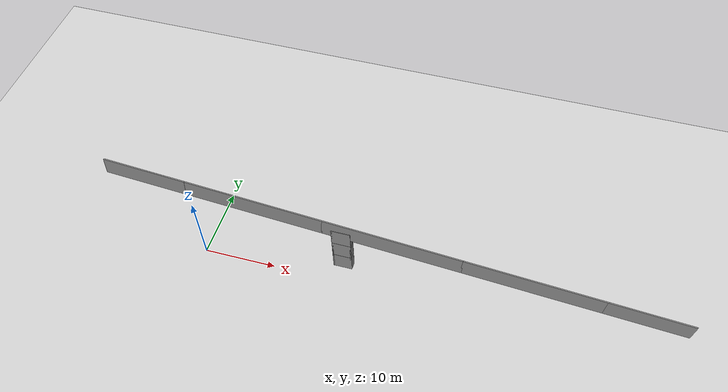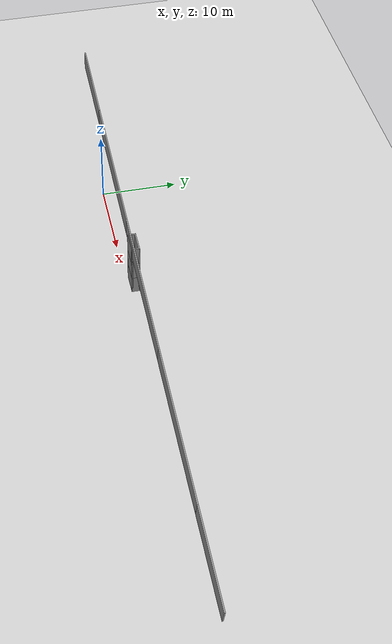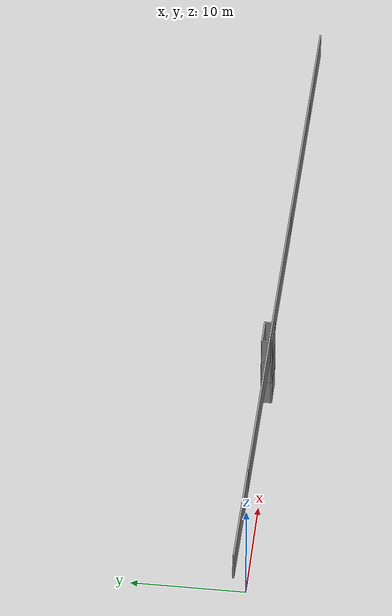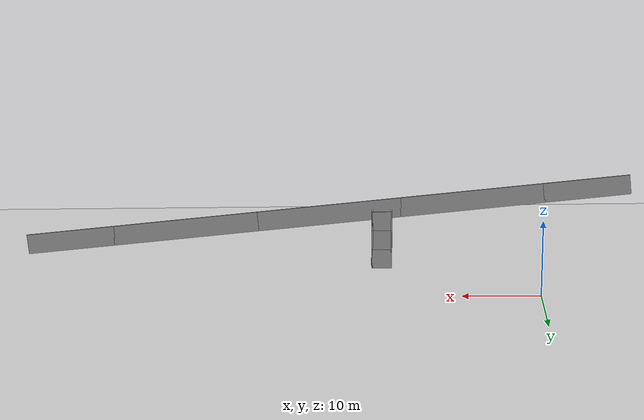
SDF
<sdf version="1.6">
 <world name="default">
  <model name="ground_plane">
   <static>1</static>
   <link name="link">
    <collision name="collision">
     <geometry><plane><normal>0 0 1</normal><size>100 100</size></plane></geometry>
     <surface><friction><ode><mu>100</mu><mu2>50</mu2></ode></friction></surface>
    </collision>
    <visual name="visual">
     <cast_shadows>0</cast_shadows>
     <geometry><plane><normal>0 0 1</normal><size>100 100</size></plane></geometry>
     <material>
      <script><uri>file://media/materials/scripts/gazebo.material</uri><name>Gazebo/Grey</name></script>
     </material>
    </visual>
   </link>
  </model>
  <model name="girder8th">
   <pose>26.53 -0.080607 9.9346 0 0.096041 0</pose>
   <link name="Wall_15">
    <collision name="Wall_15_Collision">
     <geometry><box><size>18 0.15 2.5</size></box></geometry>
     <pose>0 0 1.25 0 -0 0</pose>
    </collision>
    <visual name="Wall_15_Visual">
     <pose>0 0 1.25 0 -0 0</pose>
     <geometry><box><size>18 0.15 2.5</size></box></geometry>
     <material>
      <script><uri>file://media/materials/scripts/gazebo.material</uri><name>Gazebo/Grey</name></script>
      <ambient>1 1 1 1</ambient>
     </material>
    </visual>
    <pose>-17.85 0 0 0 -0 0</pose>
   </link>
   <link name="Wall_17">
    <collision name="Wall_17_Collision">
     <geometry><box><size>18 0.15 2.5</size></box></geometry>
     <pose>0 0 1.25 0 -0 0</pose>
    </collision>
    <visual name="Wall_17_Visual">
     <pose>0 0 1.25 0 -0 0</pose>
     <geometry><box><size>18 0.15 2.5</size></box></geometry>
     <material>
      <script><uri>file://media/materials/scripts/gazebo.material</uri><name>Gazebo/Grey</name></script>
      <ambient>1 1 1 1</ambient>
     </material>
    </visual>
   </link>
   <link name="Wall_19">
    <collision name="Wall_19_Collision">
     <geometry><box><size>18 0.15 2.5</size></box></geometry>
     <pose>0 0 1.25 0 -0 0</pose>
    </collision>
    <visual name="Wall_19_Visual">
     <pose>0 0 1.25 0 -0 0</pose>
     <geometry><box><size>18 0.15 2.5</size></box></geometry>
     <material>
      <script><uri>file://media/materials/scripts/gazebo.material</uri><name>Gazebo/Grey</name></script>
      <ambient>1 1 1 1</ambient>
     </material>
    </visual>
    <pose>17.85 0 0 0 -0 0</pose>
   </link>
   <link name="Wall_21">
    <collision name="Wall_21_Collision">
     <geometry><box><size>10.8 0.15 2.5</size></box></geometry>
     <pose>0 0 1.25 0 -0 0</pose>
    </collision>
    <visual name="Wall_21_Visual">
     <pose>0 0 1.25 0 -0 0</pose>
     <geometry><box><size>10.8 0.15 2.5</size></box></geometry>
     <material>
      <script><uri>file://media/materials/scripts/gazebo.material</uri><name>Gazebo/Grey</name></script>
      <ambient>1 1 1 1</ambient>
     </material>
    </visual>
    <pose>32.1 0 0 0 -0 0</pose>
   </link>
   <link name="Wall_9">
    <collision name="Wall_9_Collision">
     <geometry><box><size>10.8 0.15 2.5</size></box></geometry>
     <pose>0 0 1.25 0 -0 0</pose>
    </collision>
    <visual name="Wall_9_Visual">
     <pose>0 0 1.25 0 -0 0</pose>
     <geometry><box><size>10.8 0.15 2.5</size></box></geometry>
     <material>
      <script><uri>file://media/materials/scripts/gazebo.material</uri><name>Gazebo/Grey</name></script>
      <ambient>1 1 1 1</ambient>
     </material>
    </visual>
    <pose>-32.1 0 0 0 -0 0</pose>
   </link>
   <static>1</static>
  </model>
  <model name="column25_clone_3_clone_clone_0_clone_clone_clone_clone">
   <pose>20.1084 0.281961 4.25147 0 -0 8e-06</pose>
   <link name="Wall_0">
    <collision name="Wall_0_Collision">
     <geometry><box><size>2.5 0.15 2.5</size></box></geometry>
     <pose>0 0 1.25 0 -0 0</pose>
    </collision>
    <visual name="Wall_0_Visual">
     <pose>0 0 1.25 0 -0 0</pose>
     <geometry><box><size>2.5 0.15 2.5</size></box></geometry>
     <material>
      <script><uri>file://media/materials/scripts/gazebo.material</uri><name>Gazebo/Grey</name></script>
      <ambient>1 1 1 1</ambient>
     </material>
    </visual>
    <pose>0 -0.425 0 0 -0 0</pose>
   </link>
   <link name="Wall_1">
    <collision name="Wall_1_Collision">
     <geometry><box><size>1 0.15 2.5</size></box></geometry>
     <pose>0 0 1.25 0 -0 0</pose>
    </collision>
    <visual name="Wall_1_Visual">
     <pose>0 0 1.25 0 -0 0</pose>
     <geometry><box><size>1 0.15 2.5</size></box></geometry>
     <material>
      <script><uri>file://media/materials/scripts/gazebo.material</uri><name>Gazebo/Grey</name></script>
      <ambient>1 1 1 1</ambient>
     </material>
    </visual>
    <pose>1.175 0 0 0 -0 1.5708</pose>
   </link>
   <link name="Wall_2">
    <collision name="Wall_2_Collision">
     <geometry><box><size>2.5 0.15 2.5</size></box></geometry>
     <pose>0 0 1.25 0 -0 0</pose>
    </collision>
    <visual name="Wall_2_Visual">
     <pose>0 0 1.25 0 -0 0</pose>
     <geometry><box><size>2.5 0.15 2.5</size></box></geometry>
     <material>
      <script><uri>file://media/materials/scripts/gazebo.material</uri><name>Gazebo/Grey</name></script>
      <ambient>1 1 1 1</ambient>
     </material>
    </visual>
    <pose>0 0.425 0 0 -0 3.14159</pose>
   </link>
   <link name="Wall_3">
    <collision name="Wall_3_Collision">
     <geometry><box><size>1 0.15 2.5</size></box></geometry>
     <pose>0 0 1.25 0 -0 0</pose>
    </collision>
    <visual name="Wall_3_Visual">
     <pose>0 0 1.25 0 -0 0</pose>
     <geometry><box><size>1 0.15 2.5</size></box></geometry>
     <material>
      <script><uri>file://media/materials/scripts/gazebo.material</uri><name>Gazebo/Grey</name></script>
      <ambient>1 1 1 1</ambient>
     </material>
    </visual>
    <pose>-1.175 0 0 0 0 -1.5708</pose>
   </link>
   <static>1</static>
  </model>
  <model name="column25_clone_3_clone_clone_0_clone_clone_clone_clone_clone">
   <pose>20.1084 0.281961 6.75147 0 -0 8e-06</pose>
   <link name="Wall_0">
    <collision name="Wall_0_Collision">
     <geometry><box><size>2.5 0.15 2.5</size></box></geometry>
     <pose>0 0 1.25 0 -0 0</pose>
    </collision>
    <visual name="Wall_0_Visual">
     <pose>0 0 1.25 0 -0 0</pose>
     <geometry><box><size>2.5 0.15 2.5</size></box></geometry>
     <material>
      <script><uri>file://media/materials/scripts/gazebo.material</uri><name>Gazebo/Grey</name></script>
      <ambient>1 1 1 1</ambient>
     </material>
    </visual>
    <pose>0 -0.425 0 0 -0 0</pose>
   </link>
   <link name="Wall_1">
    <collision name="Wall_1_Collision">
     <geometry><box><size>1 0.15 2.5</size></box></geometry>
     <pose>0 0 1.25 0 -0 0</pose>
    </collision>
    <visual name="Wall_1_Visual">
     <pose>0 0 1.25 0 -0 0</pose>
     <geometry><box><size>1 0.15 2.5</size></box></geometry>
     <material>
      <script><uri>file://media/materials/scripts/gazebo.material</uri><name>Gazebo/Grey</name></script>
      <ambient>1 1 1 1</ambient>
     </material>
    </visual>
    <pose>1.175 0 0 0 -0 1.5708</pose>
   </link>
   <link name="Wall_2">
    <collision name="Wall_2_Collision">
     <geometry><box><size>2.5 0.15 2.5</size></box></geometry>
     <pose>0 0 1.25 0 -0 0</pose>
    </collision>
    <visual name="Wall_2_Visual">
     <pose>0 0 1.25 0 -0 0</pose>
     <geometry><box><size>2.5 0.15 2.5</size></box></geometry>
     <material>
      <script><uri>file://media/materials/scripts/gazebo.material</uri><name>Gazebo/Grey</name></script>
      <ambient>1 1 1 1</ambient>
     </material>
    </visual>
    <pose>0 0.425 0 0 -0 3.14159</pose>
   </link>
   <link name="Wall_3">
    <collision name="Wall_3_Collision">
     <geometry><box><size>1 0.15 2.5</size></box></geometry>
     <pose>0 0 1.25 0 -0 0</pose>
    </collision>
    <visual name="Wall_3_Visual">
     <pose>0 0 1.25 0 -0 0</pose>
     <geometry><box><size>1 0.15 2.5</size></box></geometry>
     <material>
      <script><uri>file://media/materials/scripts/gazebo.material</uri><name>Gazebo/Grey</name></script>
      <ambient>1 1 1 1</ambient>
     </material>
    </visual>
    <pose>-1.175 0 0 0 0 -1.5708</pose>
   </link>
   <static>1</static>
  </model>
  <model name="column25_clone_3_clone_clone_0_clone_clone_clone_clone_clone_clone_0">
   <pose>20.1084 0.281961 9.25147 0 -0 8e-06</pose>
   <link name="Wall_0">
    <collision name="Wall_0_Collision">
     <geometry><box><size>2.5 0.15 2.5</size></box></geometry>
     <pose>0 0 1.25 0 -0 0</pose>
    </collision>
    <visual name="Wall_0_Visual">
     <pose>0 0 1.25 0 -0 0</pose>
     <geometry><box><size>2.5 0.15 2.5</size></box></geometry>
     <material>
      <script><uri>file://media/materials/scripts/gazebo.material</uri><name>Gazebo/Grey</name></script>
      <ambient>1 1 1 1</ambient>
     </material>
    </visual>
    <pose>0 -0.425 0 0 -0 0</pose>
   </link>
   <link name="Wall_1">
    <collision name="Wall_1_Collision">
     <geometry><box><size>1 0.15 2.5</size></box></geometry>
     <pose>0 0 1.25 0 -0 0</pose>
    </collision>
    <visual name="Wall_1_Visual">
     <pose>0 0 1.25 0 -0 0</pose>
     <geometry><box><size>1 0.15 2.5</size></box></geometry>
     <material>
      <script><uri>file://media/materials/scripts/gazebo.material</uri><name>Gazebo/Grey</name></script>
      <ambient>1 1 1 1</ambient>
     </material>
    </visual>
    <pose>1.175 0 0 0 -0 1.5708</pose>
   </link>
   <link name="Wall_2">
    <collision name="Wall_2_Collision">
     <geometry><box><size>2.5 0.15 2.5</size></box></geometry>
     <pose>0 0 1.25 0 -0 0</pose>
    </collision>
    <visual name="Wall_2_Visual">
     <pose>0 0 1.25 0 -0 0</pose>
     <geometry><box><size>2.5 0.15 2.5</size></box></geometry>
     <material>
      <script><uri>file://media/materials/scripts/gazebo.material</uri><name>Gazebo/Grey</name></script>
      <ambient>1 1 1 1</ambient>
     </material>
    </visual>
    <pose>0 0.425 0 0 -0 3.14159</pose>
   </link>
   <link name="Wall_3">
    <collision name="Wall_3_Collision">
     <geometry><box><size>1 0.15 2.5</size></box></geometry>
     <pose>0 0 1.25 0 -0 0</pose>
    </collision>
    <visual name="Wall_3_Visual">
     <pose>0 0 1.25 0 -0 0</pose>
     <geometry><box><size>1 0.15 2.5</size></box></geometry>
     <material>
      <script><uri>file://media/materials/scripts/gazebo.material</uri><name>Gazebo/Grey</name></script>
      <ambient>1 1 1 1</ambient>
     </material>
    </visual>
    <pose>-1.175 0 0 0 0 -1.5708</pose>
   </link>
   <static>1</static>
  </model>
 </world>
</sdf>
